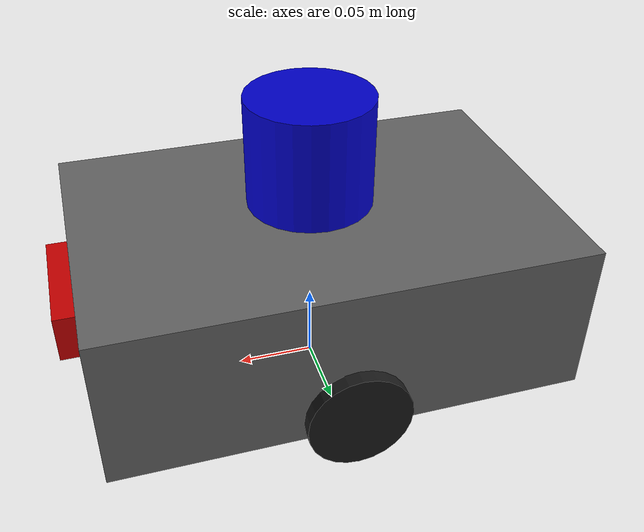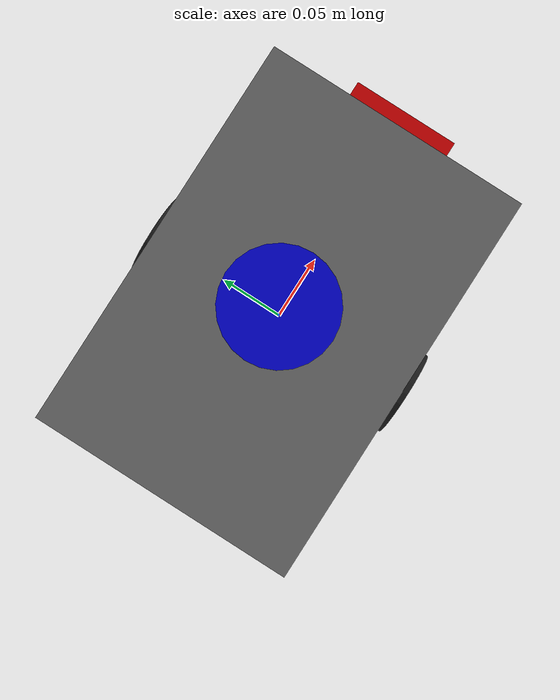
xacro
<?xml version="1.0" ?>
<robot xmlns:xacro="http://www.ros.org/wiki/xacro" name="fusion_bot">

  <!-- ==================== Links ==================== -->

  <link name="base_footprint"/>

  <link name="base_link">
    <visual>
      <origin xyz="0 0 0.06" rpy="0 0 0"/>
      <geometry><box size="0.30 0.20 0.10"/></geometry>
      <material name="dark_grey">
        <color rgba="0.4 0.4 0.4 1.0"/>
      </material>
    </visual>
    <collision>
      <origin xyz="0 0 0.06" rpy="0 0 0"/>
      <geometry><box size="0.30 0.20 0.10"/></geometry>
    </collision>
    <inertial>
      <origin xyz="0 0 0.06" rpy="0 0 0"/>
      <mass value="2.0"/>
      <inertia ixx="8.33e-3" ixy="0" ixz="0"
               iyy="1.67e-2" iyz="0" izz="2.17e-2"/>
    </inertial>
  </link>

  <link name="wheel_left_link">
    <visual>
      <origin xyz="0 0 0" rpy="1.5708 0 0"/>
      <geometry><cylinder radius="0.033" length="0.018"/></geometry>
      <material name="black"><color rgba="0.1 0.1 0.1 1.0"/></material>
    </visual>
    <collision>
      <origin xyz="0 0 0" rpy="1.5708 0 0"/>
      <geometry><cylinder radius="0.033" length="0.018"/></geometry>
    </collision>
    <inertial>
      <mass value="0.1"/>
      <inertia ixx="3.0e-5" ixy="0" ixz="0"
               iyy="3.0e-5" iyz="0" izz="5.4e-5"/>
    </inertial>
  </link>

  <link name="wheel_right_link">
    <visual>
      <origin xyz="0 0 0" rpy="1.5708 0 0"/>
      <geometry><cylinder radius="0.033" length="0.018"/></geometry>
      <material name="black"><color rgba="0.1 0.1 0.1 1.0"/></material>
    </visual>
    <collision>
      <origin xyz="0 0 0" rpy="1.5708 0 0"/>
      <geometry><cylinder radius="0.033" length="0.018"/></geometry>
    </collision>
    <inertial>
      <mass value="0.1"/>
      <inertia ixx="3.0e-5" ixy="0" ixz="0"
               iyy="3.0e-5" iyz="0" izz="5.4e-5"/>
    </inertial>
  </link>

  <link name="caster_link">
    <collision>
      <geometry><sphere radius="0.01"/></geometry>
    </collision>
    <inertial>
      <mass value="0.01"/>
      <inertia ixx="1e-6" ixy="0" ixz="0"
               iyy="1e-6" iyz="0" izz="1e-6"/>
    </inertial>
  </link>

  <link name="lidar_link">
    <visual>
      <geometry><cylinder radius="0.04" length="0.07"/></geometry>
      <material name="blue"><color rgba="0.0 0.0 0.8 1.0"/></material>
    </visual>
    <collision>
      <geometry><cylinder radius="0.04" length="0.07"/></geometry>
    </collision>
    <inertial>
      <mass value="0.5"/>
      <inertia ixx="4.0e-4" ixy="0" ixz="0"
               iyy="4.0e-4" iyz="0" izz="4.0e-4"/>
    </inertial>
  </link>

  <link name="imu_link"/>

  <link name="camera_link"/>

  <link name="camera_rgb_frame">
    <visual>
      <geometry><box size="0.03 0.08 0.03"/></geometry>
      <material name="red"><color rgba="0.8 0.0 0.0 1.0"/></material>
    </visual>
    <collision>
      <geometry><box size="0.03 0.08 0.03"/></geometry>
    </collision>
    <inertial>
      <mass value="0.1"/>
      <inertia ixx="6.1e-5" ixy="0" ixz="0"
               iyy="1.5e-5" iyz="0" izz="6.1e-5"/>
    </inertial>
  </link>

  <link name="camera_optical_frame"/>

  <!-- ==================== Joints ==================== -->

  <joint name="base_joint" type="fixed">
    <parent link="base_footprint"/>
    <child link="base_link"/>
    <origin xyz="0 0 0.010" rpy="0 0 0"/>
  </joint>

  <joint name="wheel_left_joint" type="continuous">
    <parent link="base_link"/>
    <child link="wheel_left_link"/>
    <origin xyz="0 0.10 0.023" rpy="0 0 0"/>
    <axis xyz="0 1 0"/>
  </joint>

  <joint name="wheel_right_joint" type="continuous">
    <parent link="base_link"/>
    <child link="wheel_right_link"/>
    <origin xyz="0 -0.10 0.023" rpy="0 0 0"/>
    <axis xyz="0 1 0"/>
  </joint>

  <joint name="caster_joint" type="fixed">
    <parent link="base_link"/>
    <child link="caster_link"/>
    <origin xyz="-0.12 0 -0.004" rpy="0 0 0"/>
  </joint>

  <joint name="lidar_joint" type="fixed">
    <parent link="base_link"/>
    <child link="lidar_link"/>
    <origin xyz="0 0 0.15" rpy="0 0 0"/>
  </joint>

  <joint name="imu_joint" type="fixed">
    <parent link="base_link"/>
    <child link="imu_link"/>
    <origin xyz="0 0 0.06" rpy="0 0 0"/>
  </joint>

  <joint name="camera_joint" type="fixed">
    <parent link="base_link"/>
    <child link="camera_link"/>
    <origin xyz="0.15 0 0.07" rpy="0 0 0"/>
  </joint>

  <joint name="camera_rgb_joint" type="fixed">
    <parent link="camera_link"/>
    <child link="camera_rgb_frame"/>
    <origin xyz="0 0 0" rpy="0 0 0"/>
  </joint>

  <!-- Optical frame: z-forward, x-right, y-down -->
  <joint name="camera_optical_joint" type="fixed">
    <parent link="camera_rgb_frame"/>
    <child link="camera_optical_frame"/>
    <origin xyz="0 0 0" rpy="-1.5708 0 -1.5708"/>
  </joint>

</robot>
